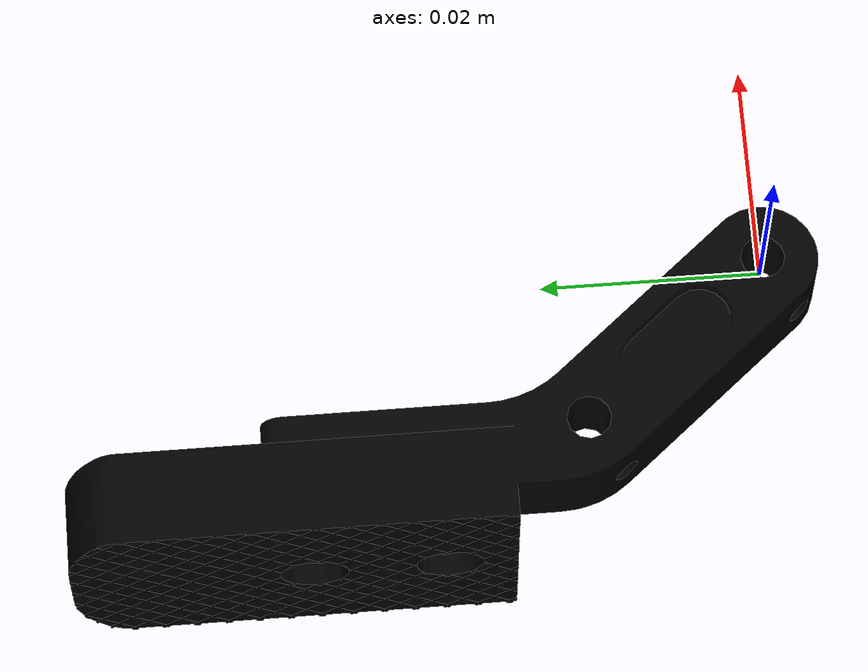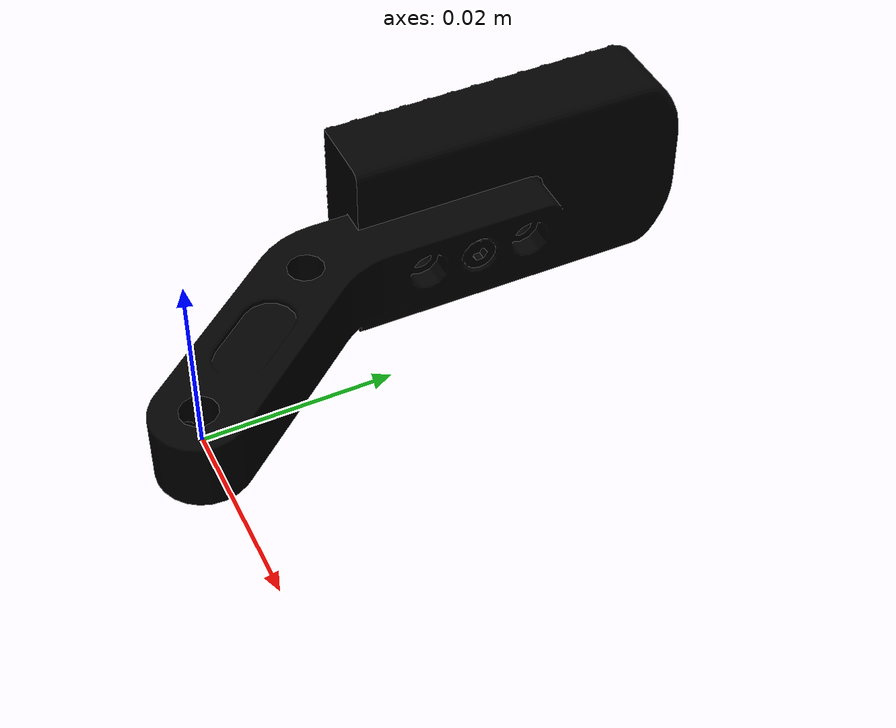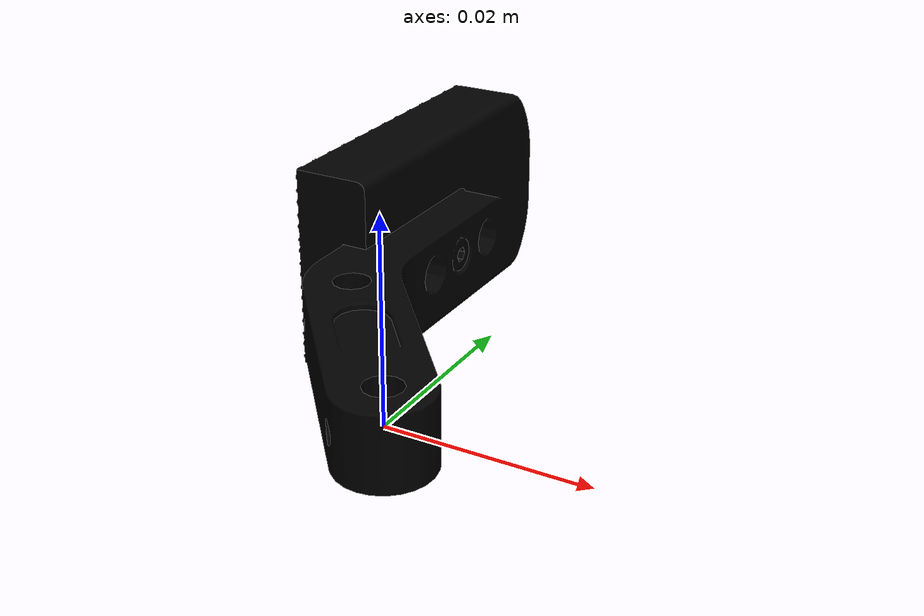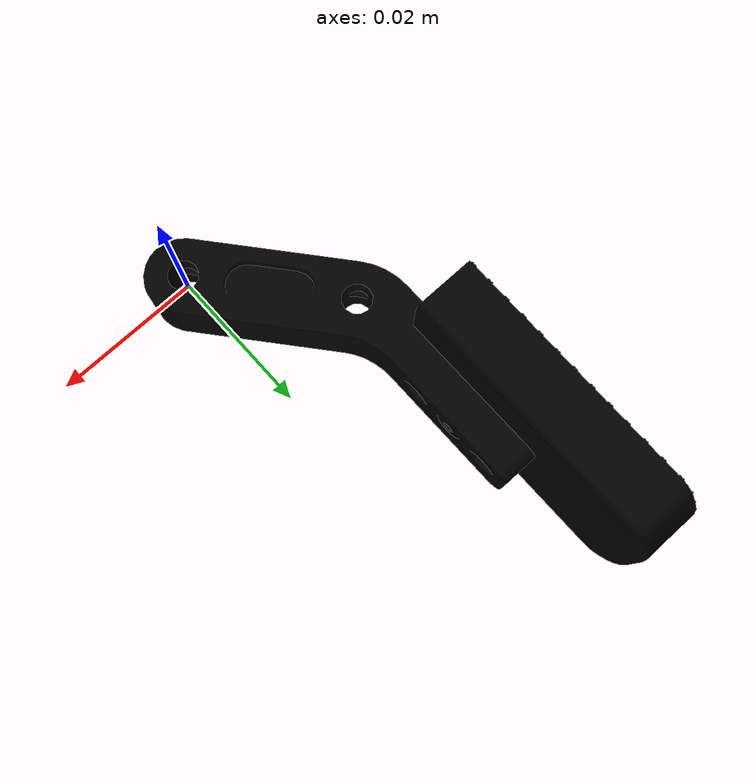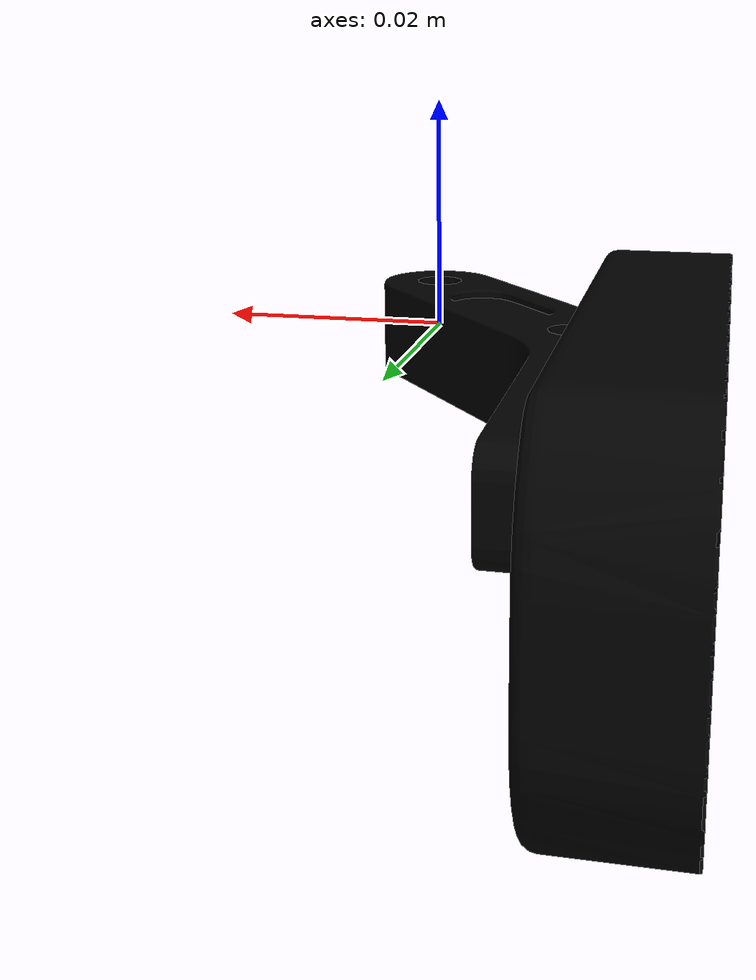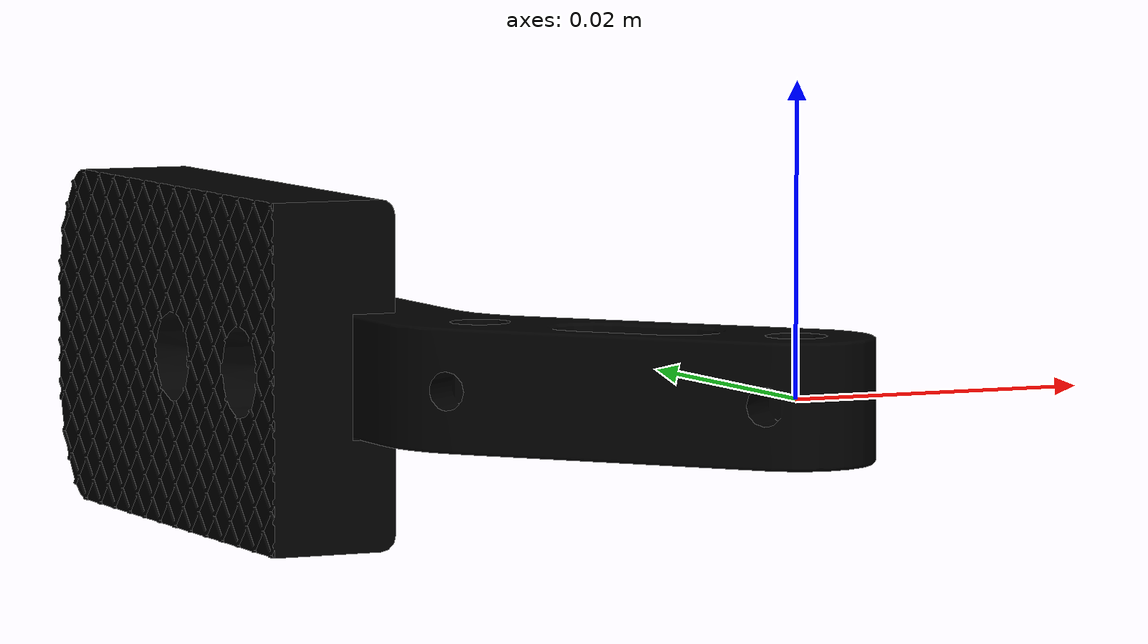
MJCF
<mujoco model="right_support_link">
  <default>
    <default class="visual">
      <geom group="2" type="mesh" contype="0" conaffinity="0"/>
    </default>
    <default class="collision">
      <geom group="3" type="mesh"/>
    </default>
  </default>
  <asset>
    <material name="material_right_support_link_0" specular="0.20000000000000004" shininess="1.0" rgba="0.00000000 0.00000000 0.00000000 1.0"/>
    <mesh file="right_support_link.obj"/>
  </asset>
  <worldbody>
    <body name="right_support_link">
      <geom material="material_right_support_link_0" mesh="right_support_link" class="visual"/>
      <geom mesh="right_support_link" class="collision"/>
    </body>
  </worldbody>
</mujoco>
